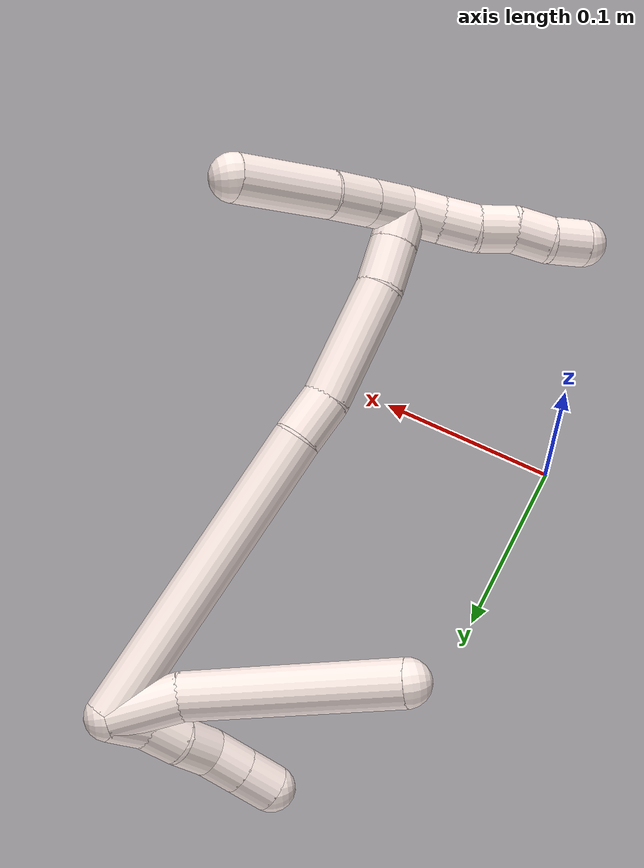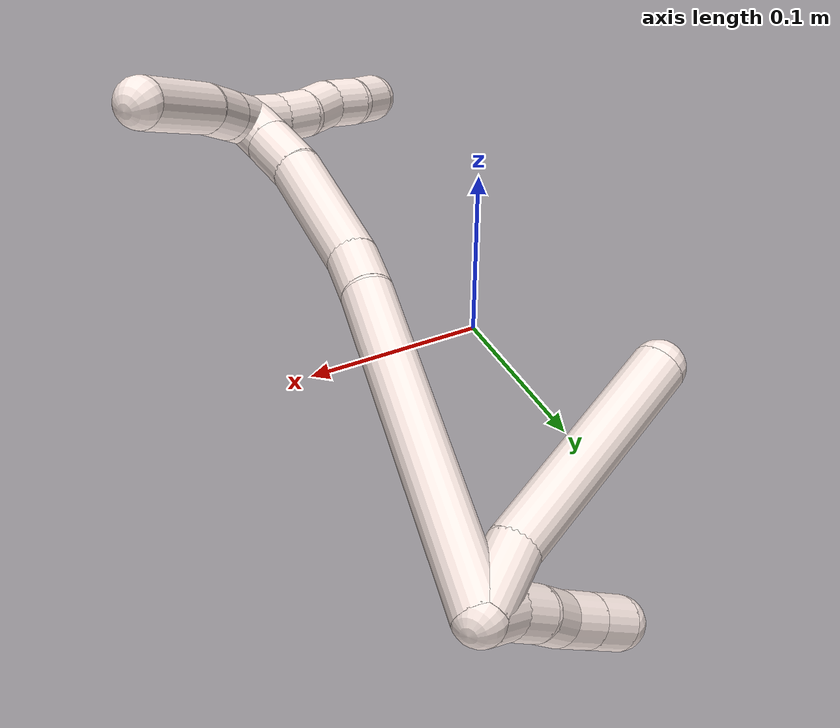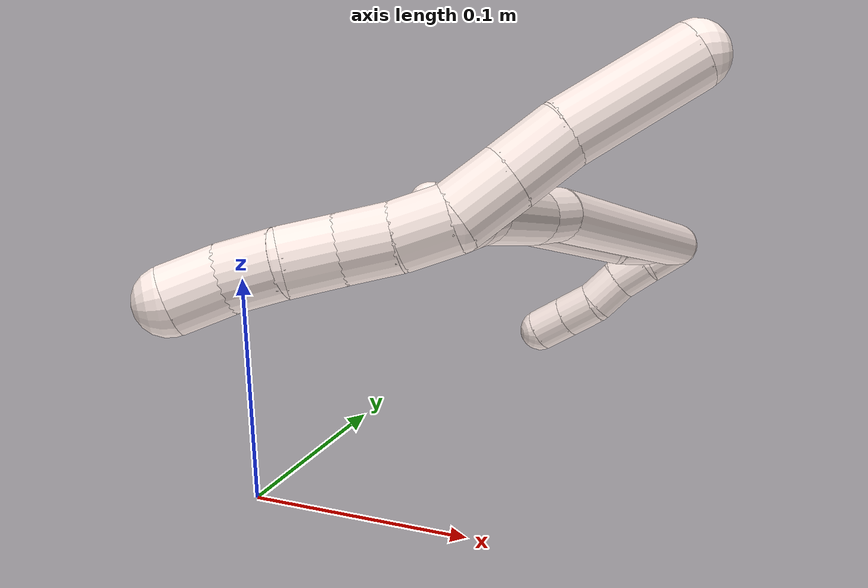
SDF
<sdf version="1.7">
 <world name="default">
  <model name="11">
   <static>0</static>
   <link name="11">
    <collision name="collision-cylinder-e_1_2_8">
     <pose>-0.004053 -0.000969 -0.018239 3.08853 -0.218386 -2.66662</pose>
     <geometry><cylinder><radius>0.0125</radius><length>0.037418</length></cylinder></geometry>
     <surface>
      <friction><ode><mu>1.16</mu><mu2>1.16</mu2><slip1>0</slip1><slip2>0</slip2></ode></friction>
      <contact><ode><kp>1e+06</kp><kd>1</kd><max_vel>0</max_vel><min_depth>0.001</min_depth></ode></contact>
     </surface>
    </collision>
    <visual name="visual-cylinder-e_1_2_8">
     <pose>-0.004053 -0.000969 -0.018239 3.08853 -0.218386 -2.66662</pose>
     <geometry><cylinder><radius>0.0125</radius><length>0.037418</length></cylinder></geometry>
     <material><ambient>1 0.933333 0.909804 1</ambient></material>
    </visual>
    <collision name="collision-cylinder-e_2_8_6">
     <pose>-0.026947 0.008612 -0.088463 -2.94139 -0.34128 2.08614</pose>
     <geometry><cylinder><radius>0.0125</radius><length>0.112582</length></cylinder></geometry>
     <surface>
      <friction><ode><mu>1.16</mu><mu2>1.16</mu2><slip1>0</slip1><slip2>0</slip2></ode></friction>
      <contact><ode><kp>1e+06</kp><kd>1</kd><max_vel>0</max_vel><min_depth>0.001</min_depth></ode></contact>
     </surface>
    </collision>
    <visual name="visual-cylinder-e_2_8_6">
     <pose>-0.026947 0.008612 -0.088463 -2.94139 -0.34128 2.08614</pose>
     <geometry><cylinder><radius>0.0125</radius><length>0.112582</length></cylinder></geometry>
     <material><ambient>1 0.933333 0.909804 1</ambient></material>
    </visual>
    <collision name="collision-cylinder-e_1_2_9">
     <pose>0.004166 0.002344 -0.008784 -2.8808 0.429651 -2.05924</pose>
     <geometry><cylinder><radius>0.0125</radius><length>0.02</length></cylinder></geometry>
     <surface>
      <friction><ode><mu>1.16</mu><mu2>1.16</mu2><slip1>0</slip1><slip2>0</slip2></ode></friction>
      <contact><ode><kp>1e+06</kp><kd>1</kd><max_vel>0</max_vel><min_depth>0.001</min_depth></ode></contact>
     </surface>
    </collision>
    <visual name="visual-cylinder-e_1_2_9">
     <pose>0.004166 0.002344 -0.008784 -2.8808 0.429651 -2.05924</pose>
     <geometry><cylinder><radius>0.0125</radius><length>0.02</length></cylinder></geometry>
     <material><ambient>1 0.933333 0.909804 1</ambient></material>
    </visual>
    <collision name="collision-cylinder-e_2_9_10">
     <pose>0.013168 0.009025 -0.025169 -2.62312 0.504926 -1.54314</pose>
     <geometry><cylinder><radius>0.0125</radius><length>0.02</length></cylinder></geometry>
     <surface>
      <friction><ode><mu>1.16</mu><mu2>1.16</mu2><slip1>0</slip1><slip2>0</slip2></ode></friction>
      <contact><ode><kp>1e+06</kp><kd>1</kd><max_vel>0</max_vel><min_depth>0.001</min_depth></ode></contact>
     </surface>
    </collision>
    <visual name="visual-cylinder-e_2_9_10">
     <pose>0.013168 0.009025 -0.025169 -2.62312 0.504926 -1.54314</pose>
     <geometry><cylinder><radius>0.0125</radius><length>0.02</length></cylinder></geometry>
     <material><ambient>1 0.933333 0.909804 1</ambient></material>
    </visual>
    <collision name="collision-cylinder-e_3_10_11">
     <pose>0.024126 0.016131 -0.04018 -2.78401 0.658576 -2.16869</pose>
     <geometry><cylinder><radius>0.0125</radius><length>0.02</length></cylinder></geometry>
     <surface>
      <friction><ode><mu>1.16</mu><mu2>1.16</mu2><slip1>0</slip1><slip2>0</slip2></ode></friction>
      <contact><ode><kp>1e+06</kp><kd>1</kd><max_vel>0</max_vel><min_depth>0.001</min_depth></ode></contact>
     </surface>
    </collision>
    <visual name="visual-cylinder-e_3_10_11">
     <pose>0.024126 0.016131 -0.04018 -2.78401 0.658576 -2.16869</pose>
     <geometry><cylinder><radius>0.0125</radius><length>0.02</length></cylinder></geometry>
     <material><ambient>1 0.933333 0.909804 1</ambient></material>
    </visual>
    <collision name="collision-cylinder-e_4_11_12">
     <pose>0.034474 0.023995 -0.055082 -2.54438 0.436523 -1.24878</pose>
     <geometry><cylinder><radius>0.0125</radius><length>0.02</length></cylinder></geometry>
     <surface>
      <friction><ode><mu>1.16</mu><mu2>1.16</mu2><slip1>0</slip1><slip2>0</slip2></ode></friction>
      <contact><ode><kp>1e+06</kp><kd>1</kd><max_vel>0</max_vel><min_depth>0.001</min_depth></ode></contact>
     </surface>
    </collision>
    <visual name="visual-cylinder-e_4_11_12">
     <pose>0.034474 0.023995 -0.055082 -2.54438 0.436523 -1.24878</pose>
     <geometry><cylinder><radius>0.0125</radius><length>0.02</length></cylinder></geometry>
     <material><ambient>1 0.933333 0.909804 1</ambient></material>
    </visual>
    <collision name="collision-cylinder-e_5_12_5">
     <pose>0.042924 0.034191 -0.07007 -2.54409 0.435883 -1.24685</pose>
     <geometry><cylinder><radius>0.0125</radius><length>0.02</length></cylinder></geometry>
     <surface>
      <friction><ode><mu>1.16</mu><mu2>1.16</mu2><slip1>0</slip1><slip2>0</slip2></ode></friction>
      <contact><ode><kp>1e+06</kp><kd>1</kd><max_vel>0</max_vel><min_depth>0.001</min_depth></ode></contact>
     </surface>
    </collision>
    <visual name="visual-cylinder-e_5_12_5">
     <pose>0.042924 0.034191 -0.07007 -2.54409 0.435883 -1.24685</pose>
     <geometry><cylinder><radius>0.0125</radius><length>0.02</length></cylinder></geometry>
     <material><ambient>1 0.933333 0.909804 1</ambient></material>
    </visual>
    <collision name="collision-cylinder-e_1_2_13">
     <pose>-0.02599 -0.055695 -0.055345 2.35305 -0.31966 -0.739295</pose>
     <geometry><cylinder><radius>0.0125</radius><length>0.165414</length></cylinder></geometry>
     <surface>
      <friction><ode><mu>1.16</mu><mu2>1.16</mu2><slip1>0</slip1><slip2>0</slip2></ode></friction>
      <contact><ode><kp>1e+06</kp><kd>1</kd><max_vel>0</max_vel><min_depth>0.001</min_depth></ode></contact>
     </surface>
    </collision>
    <visual name="visual-cylinder-e_1_2_13">
     <pose>-0.02599 -0.055695 -0.055345 2.35305 -0.31966 -0.739295</pose>
     <geometry><cylinder><radius>0.0125</radius><length>0.165414</length></cylinder></geometry>
     <material><ambient>1 0.933333 0.909804 1</ambient></material>
    </visual>
    <collision name="collision-cylinder-e_2_13_14">
     <pose>-0.054122 -0.119942 -0.11946 2.36869 -0.17306 -0.420074</pose>
     <geometry><cylinder><radius>0.0125</radius><length>0.02487</length></cylinder></geometry>
     <surface>
      <friction><ode><mu>1.16</mu><mu2>1.16</mu2><slip1>0</slip1><slip2>0</slip2></ode></friction>
      <contact><ode><kp>1e+06</kp><kd>1</kd><max_vel>0</max_vel><min_depth>0.001</min_depth></ode></contact>
     </surface>
    </collision>
    <visual name="visual-cylinder-e_2_13_14">
     <pose>-0.054122 -0.119942 -0.11946 2.36869 -0.17306 -0.420074</pose>
     <geometry><cylinder><radius>0.0125</radius><length>0.02487</length></cylinder></geometry>
     <material><ambient>1 0.933333 0.909804 1</ambient></material>
    </visual>
    <collision name="collision-cylinder-e_3_14_15">
     <pose>-0.063631 -0.153823 -0.146342 2.19161 -0.232353 -0.446303</pose>
     <geometry><cylinder><radius>0.0125</radius><length>0.063997</length></cylinder></geometry>
     <surface>
      <friction><ode><mu>1.16</mu><mu2>1.16</mu2><slip1>0</slip1><slip2>0</slip2></ode></friction>
      <contact><ode><kp>1e+06</kp><kd>1</kd><max_vel>0</max_vel><min_depth>0.001</min_depth></ode></contact>
     </surface>
    </collision>
    <visual name="visual-cylinder-e_3_14_15">
     <pose>-0.063631 -0.153823 -0.146342 2.19161 -0.232353 -0.446303</pose>
     <geometry><cylinder><radius>0.0125</radius><length>0.063997</length></cylinder></geometry>
     <material><ambient>1 0.933333 0.909804 1</ambient></material>
    </visual>
    <collision name="collision-cylinder-e_4_15_16">
     <pose>-0.072841 -0.190186 -0.170173 2.04887 -0.147123 -0.241197</pose>
     <geometry><cylinder><radius>0.0125</radius><length>0.025127</length></cylinder></geometry>
     <surface>
      <friction><ode><mu>1.16</mu><mu2>1.16</mu2><slip1>0</slip1><slip2>0</slip2></ode></friction>
      <contact><ode><kp>1e+06</kp><kd>1</kd><max_vel>0</max_vel><min_depth>0.001</min_depth></ode></contact>
     </surface>
    </collision>
    <visual name="visual-cylinder-e_4_15_16">
     <pose>-0.072841 -0.190186 -0.170173 2.04887 -0.147123 -0.241197</pose>
     <geometry><cylinder><radius>0.0125</radius><length>0.025127</length></cylinder></geometry>
     <material><ambient>1 0.933333 0.909804 1</ambient></material>
    </visual>
    <collision name="collision-cylinder-e_5_16_1">
     <pose>-0.076166 -0.210365 -0.180383 2.02741 -0.144524 -0.231383</pose>
     <geometry><cylinder><radius>0.0125</radius><length>0.020591</length></cylinder></geometry>
     <surface>
      <friction><ode><mu>1.16</mu><mu2>1.16</mu2><slip1>0</slip1><slip2>0</slip2></ode></friction>
      <contact><ode><kp>1e+06</kp><kd>1</kd><max_vel>0</max_vel><min_depth>0.001</min_depth></ode></contact>
     </surface>
    </collision>
    <visual name="visual-cylinder-e_5_16_1">
     <pose>-0.076166 -0.210365 -0.180383 2.02741 -0.144524 -0.231383</pose>
     <geometry><cylinder><radius>0.0125</radius><length>0.020591</length></cylinder></geometry>
     <material><ambient>1 0.933333 0.909804 1</ambient></material>
    </visual>
    <collision name="collision-cylinder-e_1_1_17">
     <pose>-0.075588 -0.216593 -0.194216 -2.83899 0.207498 -1.19835</pose>
     <geometry><cylinder><radius>0.0125</radius><length>0.02</length></cylinder></geometry>
     <surface>
      <friction><ode><mu>1.16</mu><mu2>1.16</mu2><slip1>0</slip1><slip2>0</slip2></ode></friction>
      <contact><ode><kp>1e+06</kp><kd>1</kd><max_vel>0</max_vel><min_depth>0.001</min_depth></ode></contact>
     </surface>
    </collision>
    <visual name="visual-cylinder-e_1_1_17">
     <pose>-0.075588 -0.216593 -0.194216 -2.83899 0.207498 -1.19835</pose>
     <geometry><cylinder><radius>0.0125</radius><length>0.02</length></cylinder></geometry>
     <material><ambient>1 0.933333 0.909804 1</ambient></material>
    </visual>
    <collision name="collision-cylinder-e_2_17_18">
     <pose>-0.072424 -0.210377 -0.212931 -2.80309 0.110677 -0.626954</pose>
     <geometry><cylinder><radius>0.0125</radius><length>0.02</length></cylinder></geometry>
     <surface>
      <friction><ode><mu>1.16</mu><mu2>1.16</mu2><slip1>0</slip1><slip2>0</slip2></ode></friction>
      <contact><ode><kp>1e+06</kp><kd>1</kd><max_vel>0</max_vel><min_depth>0.001</min_depth></ode></contact>
     </surface>
    </collision>
    <visual name="visual-cylinder-e_2_17_18">
     <pose>-0.072424 -0.210377 -0.212931 -2.80309 0.110677 -0.626954</pose>
     <geometry><cylinder><radius>0.0125</radius><length>0.02</length></cylinder></geometry>
     <material><ambient>1 0.933333 0.909804 1</ambient></material>
    </visual>
    <collision name="collision-cylinder-e_3_18_19">
     <pose>-0.070612 -0.206076 -0.232231 -3.04115 0.070755 -1.22697</pose>
     <geometry><cylinder><radius>0.0125</radius><length>0.02</length></cylinder></geometry>
     <surface>
      <friction><ode><mu>1.16</mu><mu2>1.16</mu2><slip1>0</slip1><slip2>0</slip2></ode></friction>
      <contact><ode><kp>1e+06</kp><kd>1</kd><max_vel>0</max_vel><min_depth>0.001</min_depth></ode></contact>
     </surface>
    </collision>
    <visual name="visual-cylinder-e_3_18_19">
     <pose>-0.070612 -0.206076 -0.232231 -3.04115 0.070755 -1.22697</pose>
     <geometry><cylinder><radius>0.0125</radius><length>0.02</length></cylinder></geometry>
     <material><ambient>1 0.933333 0.909804 1</ambient></material>
    </visual>
    <collision name="collision-cylinder-e_4_19_20">
     <pose>-0.068267 -0.201557 -0.251372 -2.7769 0.164552 -0.841052</pose>
     <geometry><cylinder><radius>0.0125</radius><length>0.02</length></cylinder></geometry>
     <surface>
      <friction><ode><mu>1.16</mu><mu2>1.16</mu2><slip1>0</slip1><slip2>0</slip2></ode></friction>
      <contact><ode><kp>1e+06</kp><kd>1</kd><max_vel>0</max_vel><min_depth>0.001</min_depth></ode></contact>
     </surface>
    </collision>
    <visual name="visual-cylinder-e_4_19_20">
     <pose>-0.068267 -0.201557 -0.251372 -2.7769 0.164552 -0.841052</pose>
     <geometry><cylinder><radius>0.0125</radius><length>0.02</length></cylinder></geometry>
     <material><ambient>1 0.933333 0.909804 1</ambient></material>
    </visual>
    <collision name="collision-cylinder-e_5_20_4">
     <pose>-0.064399 -0.197071 -0.270288 -3.04213 0.224865 -2.3112</pose>
     <geometry><cylinder><radius>0.0125</radius><length>0.02</length></cylinder></geometry>
     <surface>
      <friction><ode><mu>1.16</mu><mu2>1.16</mu2><slip1>0</slip1><slip2>0</slip2></ode></friction>
      <contact><ode><kp>1e+06</kp><kd>1</kd><max_vel>0</max_vel><min_depth>0.001</min_depth></ode></contact>
     </surface>
    </collision>
    <visual name="visual-cylinder-e_5_20_4">
     <pose>-0.064399 -0.197071 -0.270288 -3.04213 0.224865 -2.3112</pose>
     <geometry><cylinder><radius>0.0125</radius><length>0.02</length></cylinder></geometry>
     <material><ambient>1 0.933333 0.909804 1</ambient></material>
    </visual>
    <collision name="collision-cylinder-e_1_1_21">
     <pose>-0.082972 -0.219697 -0.174823 0.018653 -0.486955 -0.004634</pose>
     <geometry><cylinder><radius>0.0125</radius><length>0.022751</length></cylinder></geometry>
     <surface>
      <friction><ode><mu>1.16</mu><mu2>1.16</mu2><slip1>0</slip1><slip2>0</slip2></ode></friction>
      <contact><ode><kp>1e+06</kp><kd>1</kd><max_vel>0</max_vel><min_depth>0.001</min_depth></ode></contact>
     </surface>
    </collision>
    <visual name="visual-cylinder-e_1_1_21">
     <pose>-0.082972 -0.219697 -0.174823 0.018653 -0.486955 -0.004634</pose>
     <geometry><cylinder><radius>0.0125</radius><length>0.022751</length></cylinder></geometry>
     <material><ambient>1 0.933333 0.909804 1</ambient></material>
    </visual>
    <collision name="collision-cylinder-e_2_21_22">
     <pose>-0.093967 -0.220043 -0.154236 0.015026 -0.493839 -0.003788</pose>
     <geometry><cylinder><radius>0.0125</radius><length>0.023934</length></cylinder></geometry>
     <surface>
      <friction><ode><mu>1.16</mu><mu2>1.16</mu2><slip1>0</slip1><slip2>0</slip2></ode></friction>
      <contact><ode><kp>1e+06</kp><kd>1</kd><max_vel>0</max_vel><min_depth>0.001</min_depth></ode></contact>
     </surface>
    </collision>
    <visual name="visual-cylinder-e_2_21_22">
     <pose>-0.093967 -0.220043 -0.154236 0.015026 -0.493839 -0.003788</pose>
     <geometry><cylinder><radius>0.0125</radius><length>0.023934</length></cylinder></geometry>
     <material><ambient>1 0.933333 0.909804 1</ambient></material>
    </visual>
    <collision name="collision-cylinder-e_3_22_3">
     <pose>-0.109724 -0.221723 -0.11907 0.061719 -0.387941 -0.012128</pose>
     <geometry><cylinder><radius>0.0125</radius><length>0.053315</length></cylinder></geometry>
     <surface>
      <friction><ode><mu>1.16</mu><mu2>1.16</mu2><slip1>0</slip1><slip2>0</slip2></ode></friction>
      <contact><ode><kp>1e+06</kp><kd>1</kd><max_vel>0</max_vel><min_depth>0.001</min_depth></ode></contact>
     </surface>
    </collision>
    <visual name="visual-cylinder-e_3_22_3">
     <pose>-0.109724 -0.221723 -0.11907 0.061719 -0.387941 -0.012128</pose>
     <geometry><cylinder><radius>0.0125</radius><length>0.053315</length></cylinder></geometry>
     <material><ambient>1 0.933333 0.909804 1</ambient></material>
    </visual>
    <collision name="collision-sphere-3">
     <pose>-0.119808 -0.223245 -0.094441 0 -0 0</pose>
     <geometry><sphere><radius>0.0125</radius></sphere></geometry>
     <surface>
      <friction><ode><mu>1.16</mu><mu2>1.16</mu2><slip1>0</slip1><slip2>0</slip2></ode></friction>
      <contact><ode><kp>1e+06</kp><kd>1</kd><max_vel>0</max_vel><min_depth>0.001</min_depth></ode></contact>
     </surface>
    </collision>
    <visual name="visual-sphere-3">
     <pose>-0.119808 -0.223245 -0.094441 0 -0 0</pose>
     <geometry><sphere><radius>0.0125</radius></sphere></geometry>
     <material><ambient>1 0.933333 0.909804 1</ambient></material>
    </visual>
    <collision name="collision-sphere-22">
     <pose>-0.099639 -0.220201 -0.1437 0 -0 0</pose>
     <geometry><sphere><radius>0.0125</radius></sphere></geometry>
     <surface>
      <friction><ode><mu>1.16</mu><mu2>1.16</mu2><slip1>0</slip1><slip2>0</slip2></ode></friction>
      <contact><ode><kp>1e+06</kp><kd>1</kd><max_vel>0</max_vel><min_depth>0.001</min_depth></ode></contact>
     </surface>
    </collision>
    <visual name="visual-sphere-22">
     <pose>-0.099639 -0.220201 -0.1437 0 -0 0</pose>
     <geometry><sphere><radius>0.0125</radius></sphere></geometry>
     <material><ambient>1 0.933333 0.909804 1</ambient></material>
    </visual>
    <collision name="collision-sphere-21">
     <pose>-0.088295 -0.219884 -0.164772 0 -0 0</pose>
     <geometry><sphere><radius>0.0125</radius></sphere></geometry>
     <surface>
      <friction><ode><mu>1.16</mu><mu2>1.16</mu2><slip1>0</slip1><slip2>0</slip2></ode></friction>
      <contact><ode><kp>1e+06</kp><kd>1</kd><max_vel>0</max_vel><min_depth>0.001</min_depth></ode></contact>
     </surface>
    </collision>
    <visual name="visual-sphere-21">
     <pose>-0.088295 -0.219884 -0.164772 0 -0 0</pose>
     <geometry><sphere><radius>0.0125</radius></sphere></geometry>
     <material><ambient>1 0.933333 0.909804 1</ambient></material>
    </visual>
    <collision name="collision-sphere-4">
     <pose>-0.06217 -0.196103 -0.279988 0 -0 0</pose>
     <geometry><sphere><radius>0.0125</radius></sphere></geometry>
     <surface>
      <friction><ode><mu>1.16</mu><mu2>1.16</mu2><slip1>0</slip1><slip2>0</slip2></ode></friction>
      <contact><ode><kp>1e+06</kp><kd>1</kd><max_vel>0</max_vel><min_depth>0.001</min_depth></ode></contact>
     </surface>
    </collision>
    <visual name="visual-sphere-4">
     <pose>-0.06217 -0.196103 -0.279988 0 -0 0</pose>
     <geometry><sphere><radius>0.0125</radius></sphere></geometry>
     <material><ambient>1 0.933333 0.909804 1</ambient></material>
    </visual>
    <collision name="collision-sphere-20">
     <pose>-0.066629 -0.198039 -0.260588 0 -0 0</pose>
     <geometry><sphere><radius>0.0125</radius></sphere></geometry>
     <surface>
      <friction><ode><mu>1.16</mu><mu2>1.16</mu2><slip1>0</slip1><slip2>0</slip2></ode></friction>
      <contact><ode><kp>1e+06</kp><kd>1</kd><max_vel>0</max_vel><min_depth>0.001</min_depth></ode></contact>
     </surface>
    </collision>
    <visual name="visual-sphere-20">
     <pose>-0.066629 -0.198039 -0.260588 0 -0 0</pose>
     <geometry><sphere><radius>0.0125</radius></sphere></geometry>
     <material><ambient>1 0.933333 0.909804 1</ambient></material>
    </visual>
    <collision name="collision-sphere-11">
     <pose>0.030246 0.018899 -0.047588 0 -0 0</pose>
     <geometry><sphere><radius>0.0125</radius></sphere></geometry>
     <surface>
      <friction><ode><mu>1.16</mu><mu2>1.16</mu2><slip1>0</slip1><slip2>0</slip2></ode></friction>
      <contact><ode><kp>1e+06</kp><kd>1</kd><max_vel>0</max_vel><min_depth>0.001</min_depth></ode></contact>
     </surface>
    </collision>
    <visual name="visual-sphere-11">
     <pose>0.030246 0.018899 -0.047588 0 -0 0</pose>
     <geometry><sphere><radius>0.0125</radius></sphere></geometry>
     <material><ambient>1 0.933333 0.909804 1</ambient></material>
    </visual>
    <collision name="collision-sphere-10">
     <pose>0.018006 0.013362 -0.032771 0 -0 0</pose>
     <geometry><sphere><radius>0.0125</radius></sphere></geometry>
     <surface>
      <friction><ode><mu>1.16</mu><mu2>1.16</mu2><slip1>0</slip1><slip2>0</slip2></ode></friction>
      <contact><ode><kp>1e+06</kp><kd>1</kd><max_vel>0</max_vel><min_depth>0.001</min_depth></ode></contact>
     </surface>
    </collision>
    <visual name="visual-sphere-10">
     <pose>0.018006 0.013362 -0.032771 0 -0 0</pose>
     <geometry><sphere><radius>0.0125</radius></sphere></geometry>
     <material><ambient>1 0.933333 0.909804 1</ambient></material>
    </visual>
    <collision name="collision-sphere-6">
     <pose>-0.045787 0.01916 -0.140448 0 -0 0</pose>
     <geometry><sphere><radius>0.0125</radius></sphere></geometry>
     <surface>
      <friction><ode><mu>1.16</mu><mu2>1.16</mu2><slip1>0</slip1><slip2>0</slip2></ode></friction>
      <contact><ode><kp>1e+06</kp><kd>1</kd><max_vel>0</max_vel><min_depth>0.001</min_depth></ode></contact>
     </surface>
    </collision>
    <visual name="visual-sphere-6">
     <pose>-0.045787 0.01916 -0.140448 0 -0 0</pose>
     <geometry><sphere><radius>0.0125</radius></sphere></geometry>
     <material><ambient>1 0.933333 0.909804 1</ambient></material>
    </visual>
    <collision name="collision-sphere-9">
     <pose>0.008331 0.004688 -0.017567 0 -0 0</pose>
     <geometry><sphere><radius>0.0125</radius></sphere></geometry>
     <surface>
      <friction><ode><mu>1.16</mu><mu2>1.16</mu2><slip1>0</slip1><slip2>0</slip2></ode></friction>
      <contact><ode><kp>1e+06</kp><kd>1</kd><max_vel>0</max_vel><min_depth>0.001</min_depth></ode></contact>
     </surface>
    </collision>
    <visual name="visual-sphere-9">
     <pose>0.008331 0.004688 -0.017567 0 -0 0</pose>
     <geometry><sphere><radius>0.0125</radius></sphere></geometry>
     <material><ambient>1 0.933333 0.909804 1</ambient></material>
    </visual>
    <collision name="collision-sphere-2">
     <geometry><sphere><radius>0.0125</radius></sphere></geometry>
     <surface>
      <friction><ode><mu>1.16</mu><mu2>1.16</mu2><slip1>0</slip1><slip2>0</slip2></ode></friction>
      <contact><ode><kp>1e+06</kp><kd>1</kd><max_vel>0</max_vel><min_depth>0.001</min_depth></ode></contact>
     </surface>
    </collision>
    <visual name="visual-sphere-2">
     <geometry><sphere><radius>0.0125</radius></sphere></geometry>
     <material><ambient>1 0.933333 0.909804 1</ambient></material>
    </visual>
    <collision name="collision-sphere-19">
     <pose>-0.069905 -0.205076 -0.242156 0 -0 0</pose>
     <geometry><sphere><radius>0.0125</radius></sphere></geometry>
     <surface>
      <friction><ode><mu>1.16</mu><mu2>1.16</mu2><slip1>0</slip1><slip2>0</slip2></ode></friction>
      <contact><ode><kp>1e+06</kp><kd>1</kd><max_vel>0</max_vel><min_depth>0.001</min_depth></ode></contact>
     </surface>
    </collision>
    <visual name="visual-sphere-19">
     <pose>-0.069905 -0.205076 -0.242156 0 -0 0</pose>
     <geometry><sphere><radius>0.0125</radius></sphere></geometry>
     <material><ambient>1 0.933333 0.909804 1</ambient></material>
    </visual>
    <collision name="collision-sphere-8">
     <pose>-0.008107 -0.001937 -0.036478 0 -0 0</pose>
     <geometry><sphere><radius>0.0125</radius></sphere></geometry>
     <surface>
      <friction><ode><mu>1.16</mu><mu2>1.16</mu2><slip1>0</slip1><slip2>0</slip2></ode></friction>
      <contact><ode><kp>1e+06</kp><kd>1</kd><max_vel>0</max_vel><min_depth>0.001</min_depth></ode></contact>
     </surface>
    </collision>
    <visual name="visual-sphere-8">
     <pose>-0.008107 -0.001937 -0.036478 0 -0 0</pose>
     <geometry><sphere><radius>0.0125</radius></sphere></geometry>
     <material><ambient>1 0.933333 0.909804 1</ambient></material>
    </visual>
    <collision name="collision-sphere-12">
     <pose>0.038702 0.029091 -0.062575 0 -0 0</pose>
     <geometry><sphere><radius>0.0125</radius></sphere></geometry>
     <surface>
      <friction><ode><mu>1.16</mu><mu2>1.16</mu2><slip1>0</slip1><slip2>0</slip2></ode></friction>
      <contact><ode><kp>1e+06</kp><kd>1</kd><max_vel>0</max_vel><min_depth>0.001</min_depth></ode></contact>
     </surface>
    </collision>
    <visual name="visual-sphere-12">
     <pose>0.038702 0.029091 -0.062575 0 -0 0</pose>
     <geometry><sphere><radius>0.0125</radius></sphere></geometry>
     <material><ambient>1 0.933333 0.909804 1</ambient></material>
    </visual>
    <collision name="collision-sphere-5">
     <pose>0.047146 0.03929 -0.077564 0 -0 0</pose>
     <geometry><sphere><radius>0.0125</radius></sphere></geometry>
     <surface>
      <friction><ode><mu>1.16</mu><mu2>1.16</mu2><slip1>0</slip1><slip2>0</slip2></ode></friction>
      <contact><ode><kp>1e+06</kp><kd>1</kd><max_vel>0</max_vel><min_depth>0.001</min_depth></ode></contact>
     </surface>
    </collision>
    <visual name="visual-sphere-5">
     <pose>0.047146 0.03929 -0.077564 0 -0 0</pose>
     <geometry><sphere><radius>0.0125</radius></sphere></geometry>
     <material><ambient>1 0.933333 0.909804 1</ambient></material>
    </visual>
    <collision name="collision-sphere-13">
     <pose>-0.05198 -0.111389 -0.11069 0 -0 0</pose>
     <geometry><sphere><radius>0.0125</radius></sphere></geometry>
     <surface>
      <friction><ode><mu>1.16</mu><mu2>1.16</mu2><slip1>0</slip1><slip2>0</slip2></ode></friction>
      <contact><ode><kp>1e+06</kp><kd>1</kd><max_vel>0</max_vel><min_depth>0.001</min_depth></ode></contact>
     </surface>
    </collision>
    <visual name="visual-sphere-13">
     <pose>-0.05198 -0.111389 -0.11069 0 -0 0</pose>
     <geometry><sphere><radius>0.0125</radius></sphere></geometry>
     <material><ambient>1 0.933333 0.909804 1</ambient></material>
    </visual>
    <collision name="collision-sphere-14">
     <pose>-0.056263 -0.128495 -0.128229 0 -0 0</pose>
     <geometry><sphere><radius>0.0125</radius></sphere></geometry>
     <surface>
      <friction><ode><mu>1.16</mu><mu2>1.16</mu2><slip1>0</slip1><slip2>0</slip2></ode></friction>
      <contact><ode><kp>1e+06</kp><kd>1</kd><max_vel>0</max_vel><min_depth>0.001</min_depth></ode></contact>
     </surface>
    </collision>
    <visual name="visual-sphere-14">
     <pose>-0.056263 -0.128495 -0.128229 0 -0 0</pose>
     <geometry><sphere><radius>0.0125</radius></sphere></geometry>
     <material><ambient>1 0.933333 0.909804 1</ambient></material>
    </visual>
    <collision name="collision-sphere-15">
     <pose>-0.070999 -0.179151 -0.164455 0 -0 0</pose>
     <geometry><sphere><radius>0.0125</radius></sphere></geometry>
     <surface>
      <friction><ode><mu>1.16</mu><mu2>1.16</mu2><slip1>0</slip1><slip2>0</slip2></ode></friction>
      <contact><ode><kp>1e+06</kp><kd>1</kd><max_vel>0</max_vel><min_depth>0.001</min_depth></ode></contact>
     </surface>
    </collision>
    <visual name="visual-sphere-15">
     <pose>-0.070999 -0.179151 -0.164455 0 -0 0</pose>
     <geometry><sphere><radius>0.0125</radius></sphere></geometry>
     <material><ambient>1 0.933333 0.909804 1</ambient></material>
    </visual>
    <collision name="collision-sphere-16">
     <pose>-0.074683 -0.20122 -0.17589 0 -0 0</pose>
     <geometry><sphere><radius>0.0125</radius></sphere></geometry>
     <surface>
      <friction><ode><mu>1.16</mu><mu2>1.16</mu2><slip1>0</slip1><slip2>0</slip2></ode></friction>
      <contact><ode><kp>1e+06</kp><kd>1</kd><max_vel>0</max_vel><min_depth>0.001</min_depth></ode></contact>
     </surface>
    </collision>
    <visual name="visual-sphere-16">
     <pose>-0.074683 -0.20122 -0.17589 0 -0 0</pose>
     <geometry><sphere><radius>0.0125</radius></sphere></geometry>
     <material><ambient>1 0.933333 0.909804 1</ambient></material>
    </visual>
    <collision name="collision-sphere-1">
     <pose>-0.077648 -0.219509 -0.184875 0 -0 0</pose>
     <geometry><sphere><radius>0.0125</radius></sphere></geometry>
     <surface>
      <friction><ode><mu>1.16</mu><mu2>1.16</mu2><slip1>0</slip1><slip2>0</slip2></ode></friction>
      <contact><ode><kp>1e+06</kp><kd>1</kd><max_vel>0</max_vel><min_depth>0.001</min_depth></ode></contact>
     </surface>
    </collision>
    <visual name="visual-sphere-1">
     <pose>-0.077648 -0.219509 -0.184875 0 -0 0</pose>
     <geometry><sphere><radius>0.0125</radius></sphere></geometry>
     <material><ambient>1 0.933333 0.909804 1</ambient></material>
    </visual>
    <collision name="collision-sphere-18">
     <pose>-0.071319 -0.207076 -0.222306 0 -0 0</pose>
     <geometry><sphere><radius>0.0125</radius></sphere></geometry>
     <surface>
      <friction><ode><mu>1.16</mu><mu2>1.16</mu2><slip1>0</slip1><slip2>0</slip2></ode></friction>
      <contact><ode><kp>1e+06</kp><kd>1</kd><max_vel>0</max_vel><min_depth>0.001</min_depth></ode></contact>
     </surface>
    </collision>
    <visual name="visual-sphere-18">
     <pose>-0.071319 -0.207076 -0.222306 0 -0 0</pose>
     <geometry><sphere><radius>0.0125</radius></sphere></geometry>
     <material><ambient>1 0.933333 0.909804 1</ambient></material>
    </visual>
    <collision name="collision-sphere-17">
     <pose>-0.073528 -0.213677 -0.203557 0 -0 0</pose>
     <geometry><sphere><radius>0.0125</radius></sphere></geometry>
     <surface>
      <friction><ode><mu>1.16</mu><mu2>1.16</mu2><slip1>0</slip1><slip2>0</slip2></ode></friction>
      <contact><ode><kp>1e+06</kp><kd>1</kd><max_vel>0</max_vel><min_depth>0.001</min_depth></ode></contact>
     </surface>
    </collision>
    <visual name="visual-sphere-17">
     <pose>-0.073528 -0.213677 -0.203557 0 -0 0</pose>
     <geometry><sphere><radius>0.0125</radius></sphere></geometry>
     <material><ambient>1 0.933333 0.909804 1</ambient></material>
    </visual>
    <inertial>
     <pose>-0.041249 -0.094964 -0.108463 0 -0 0</pose>
     <mass>0.75</mass>
     <inertia>
      <ixx>7.4e-05</ixx>
      <ixy>0</ixy>
      <ixz>0</ixz>
      <iyy>-0.000247</iyy>
      <iyz>0</iyz>
      <izz>0.000397</izz>
     </inertia>
    </inertial>
   </link>
   <pose>0.132422 0.249368 0.070212 -0.550858 1.44724 0.112297</pose>
  </model>
 </world>
</sdf>
